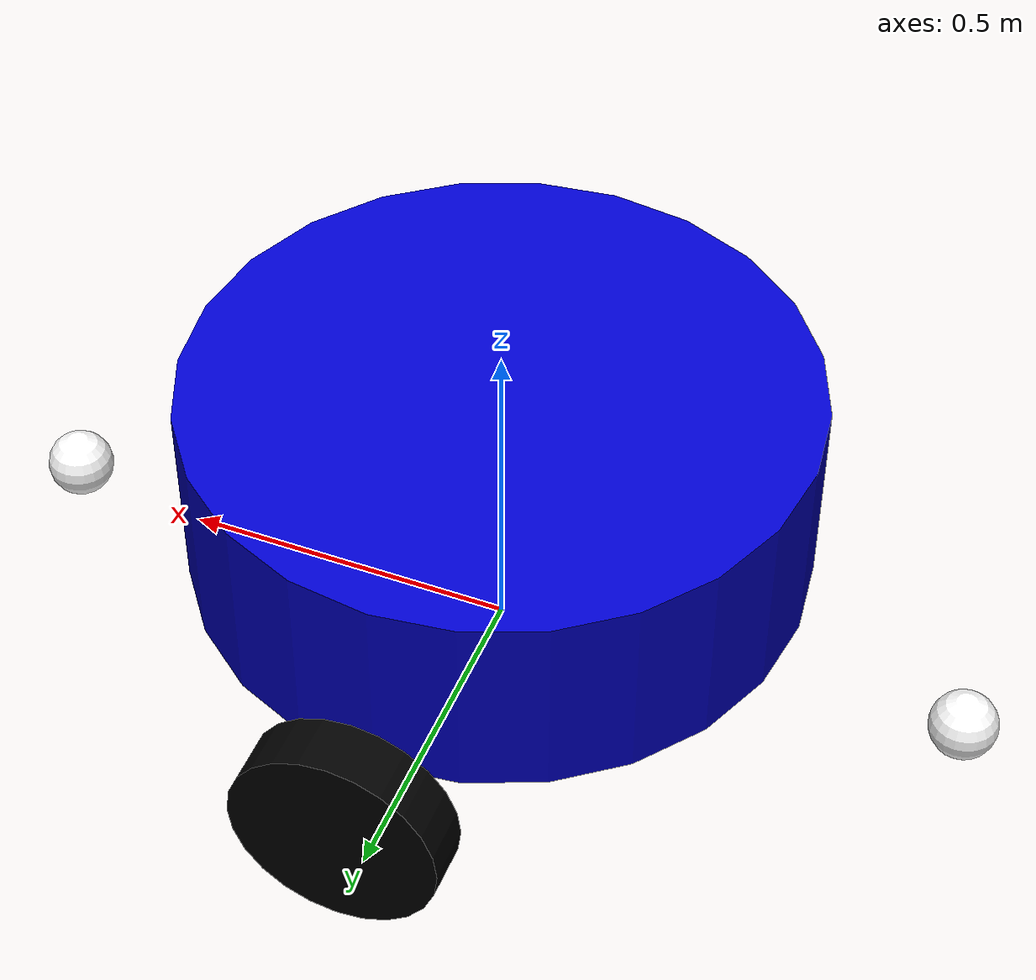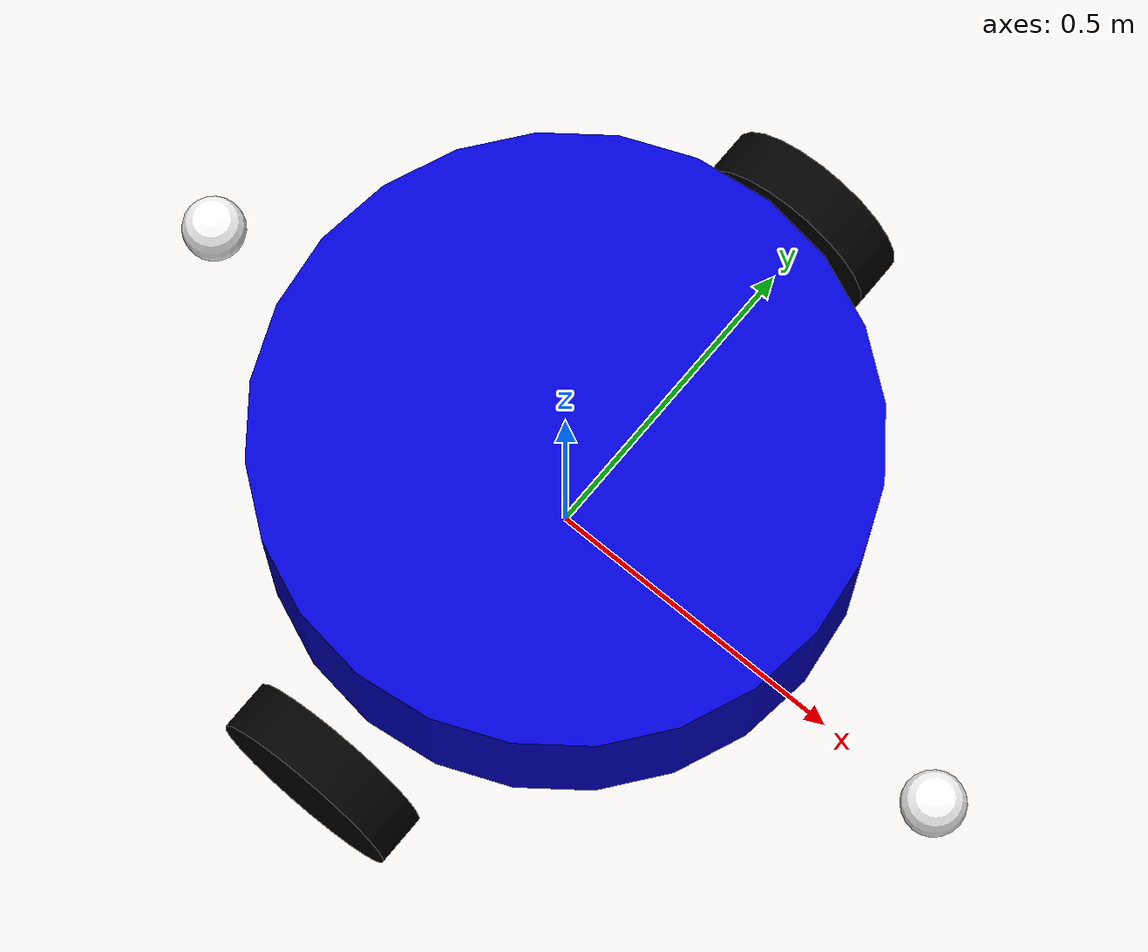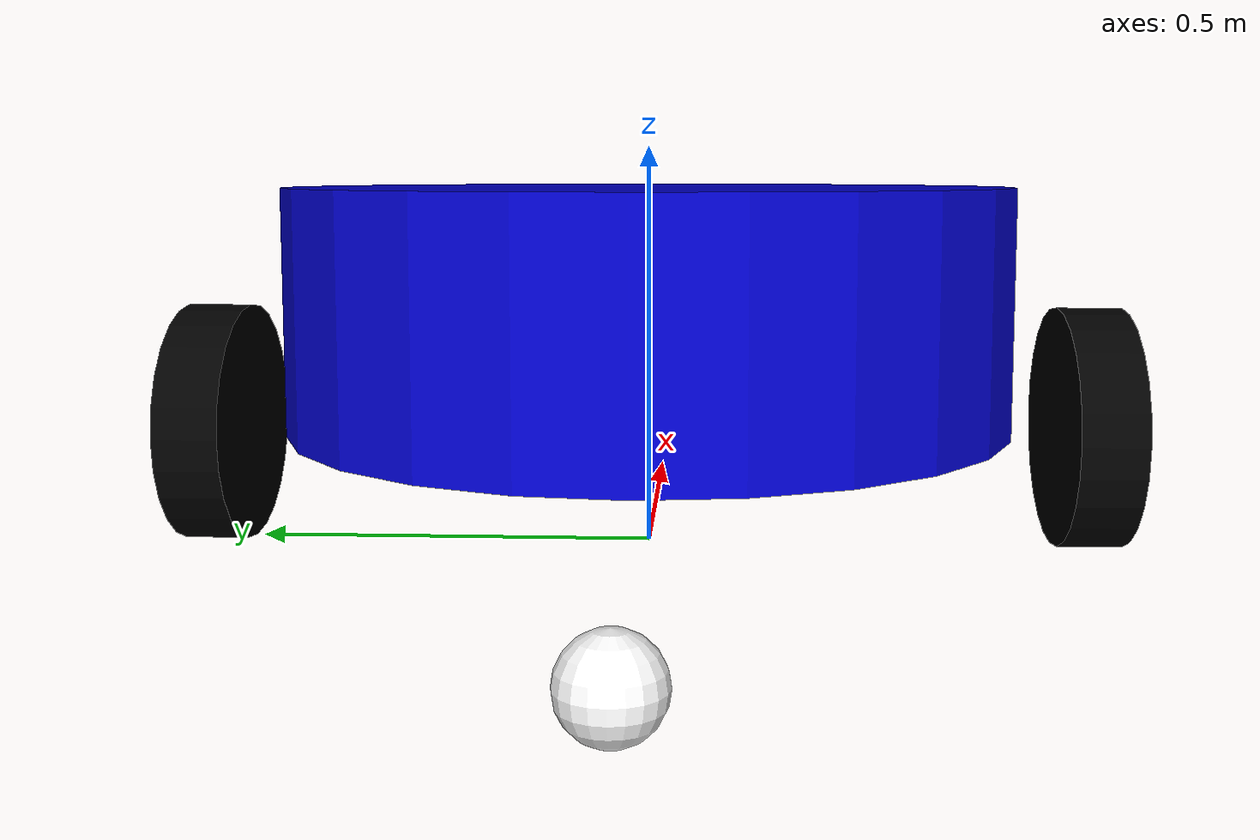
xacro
<?xml version="1.0"?>
<robot name="my_diff_robot" xmlns:xacro="http://ros.org/wiki/xacro">

  <!-- ====================== КОНСТАНТЫ ====================== -->
  <xacro:property name="wheel_radius" value="0.15"/>
  <xacro:property name="wheel_width"  value="0.08"/>
  <xacro:property name="base_radius"  value="0.45"/>
  <xacro:property name="base_height"  value="0.30"/>
  <xacro:property name="caster_radius" value="0.05"/>
  <xacro:property name="wheel_offset_y" value="0.55"/>
  <xacro:property name="caster_offset_x" value="0.70"/>

  <!-- ====================== МАТЕРИАЛЫ ====================== -->
  <material name="blue"><color rgba="0 0 0.8 1"/></material>
  <material name="black"><color rgba="0 0 0 1"/></material>
  <material name="white"><color rgba="1 1 1 1"/></material>

  <!-- ====================== МАКРОС ДЛЯ КОЛЕСА ====================== -->
  <xacro:macro name="wheel" params="name reflect_y">
    <link name="${name}_wheel">
      <visual>
        <origin xyz="0 0 0" rpy="1.5708 0 0"/>
        <geometry>
          <cylinder radius="${wheel_radius}" length="${wheel_width}"/>
        </geometry>
        <material name="black"/>
      </visual>
      <collision>
        <origin xyz="0 0 0" rpy="1.5708 0 0"/>
        <geometry>
          <cylinder radius="${wheel_radius}" length="${wheel_width}"/>
        </geometry>
      </collision>
      <inertial>
        <mass value="2.0"/>
        <inertia ixx="0.03" ixy="0" ixz="0" iyy="0.03" iyz="0" izz="0.01"/>
      </inertial>
    </link>

    <joint name="${name}_wheel_joint" type="continuous">
      <parent link="base_link"/>
      <child link="${name}_wheel"/>
      <origin xyz="0 ${reflect_y * wheel_offset_y} ${wheel_radius}" rpy="0 0 0"/>  <!-- Сдвиг по z на радиус -->
      <axis xyz="0 1 0"/>
    </joint>
  </xacro:macro>

  <!-- ====================== ОСНОВНОЙ КОРПУС ====================== -->
  <link name="base_link">
    <visual>
      <origin xyz="0 0 ${wheel_radius + base_height / 2}" rpy="0 0 0"/>  <!-- Сдвиг вверх для выравнивания -->
      <geometry>
        <cylinder radius="${base_radius}" length="${base_height}"/>
      </geometry>
      <material name="blue"/>
    </visual>
    <collision>
      <origin xyz="0 0 ${wheel_radius + base_height / 2}" rpy="0 0 0"/>
      <geometry>
        <cylinder radius="${base_radius}" length="${base_height}"/>
      </geometry>
    </collision>
    <inertial>
      <mass value="15.0"/>
      <inertia ixx="1.0" ixy="0" ixz="0" iyy="1.0" iyz="0" izz="0.8"/>
    </inertial>
  </link>

  <!-- ====================== КОЛЁСА ====================== -->
  <xacro:wheel name="left"  reflect_y="1"/>
  <xacro:wheel name="right" reflect_y="-1"/>

  <!-- ====================== КАСТЕРЫ ====================== -->
  <xacro:macro name="caster" params="name x">
    <link name="${name}">
      <visual>
        <geometry><sphere radius="${caster_radius}"/></geometry>
        <material name="white"/>
      </visual>
      <collision>
        <geometry><sphere radius="${caster_radius}"/></geometry>
      </collision>
      <inertial>
        <mass value="0.5"/>
        <inertia ixx="0.001" ixy="0" ixz="0" iyy="0.001" iyz="0" izz="0.001"/>
      </inertial>
    </link>
    <joint name="${name}_joint" type="fixed">
      <parent link="base_link"/>
      <child link="${name}"/>
      <origin xyz="${x} 0 ${caster_radius}"/>  <!-- Сдвиг по z на радиус -->
    </joint>
  </xacro:macro>

  <xacro:caster name="caster_front" x="${caster_offset_x}"/>
  <xacro:caster name="caster_back"  x="-${caster_offset_x}"/>

  <xacro:include filename="$(find my_robot_gazebo)/ex03/robot.gazebo.xacro" />

</robot>
